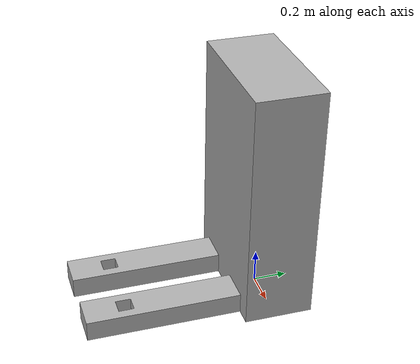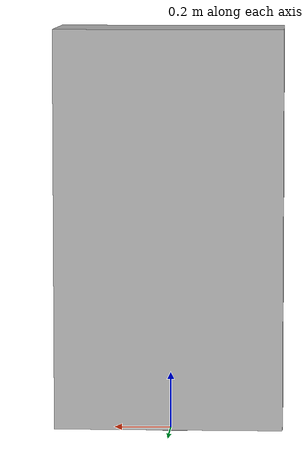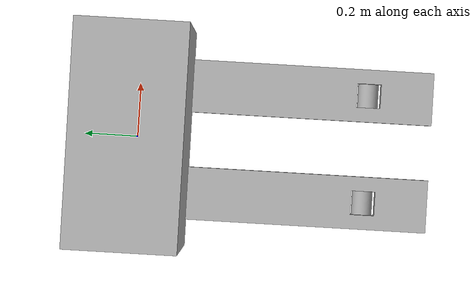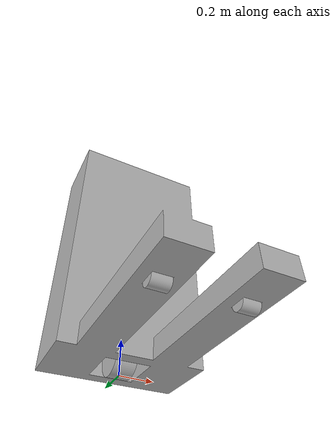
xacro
<?xml version="1.0" ?>
<robot name="Stacker" xmlns:xacro="http://www.ros.org/wiki/xacro">

<xacro:include filename="$(find stacker_description)/urdf/materials.xacro" />
<xacro:include filename="$(find stacker_description)/urdf/Stacker.trans" />
<xacro:include filename="$(find stacker_description)/urdf/Stacker.gazebo" />

<link name="base_footprint"/>

<link name="base_link">
  <inertial>
    <origin xyz="0.0 -0.05460469962339392 0.6911432734922607" rpy="0 0 0"/>
    <mass value="3737.5898543243475"/>
    <inertia ixx="851.809933" iyy="865.191869" izz="388.750555" ixy="0.0" iyz="-122.687313" ixz="0.0"/>
  </inertial>
  <visual>
    <origin xyz="0 0 0" rpy="0 0 0"/>
    <geometry>
      <mesh filename="package://stacker_description/meshes/base_link.stl" scale="0.001 0.001 0.001"/>
    </geometry>
    <material name="silver"/>
  </visual>
  <collision>
    <origin xyz="0 0 0" rpy="0 0 0"/>
    <geometry>
      <mesh filename="package://stacker_description/meshes/base_link.stl" scale="0.001 0.001 0.001"/>
    </geometry>
  </collision>
</link>

<link name="wheel_1">
  <inertial>
    <origin xyz="0.06 1.459363100219793e-17 1.3877787807814457e-17" rpy="0 0 0"/>
    <mass value="39.137804198788956"/>
    <inertia ixx="0.258799" iyy="0.176365" izz="0.176365" ixy="0.0" iyz="0.0" ixz="0.0"/>
  </inertial>
  <visual>
    <origin xyz="0.06 -0.0 -0.106" rpy="0 0 0"/>
    <geometry>
      <mesh filename="package://stacker_description/meshes/wheel_1.stl" scale="0.001 0.001 0.001"/>
    </geometry>
    <material name="silver"/>
  </visual>
  <collision>
    <origin xyz="0.06 -0.0 -0.106" rpy="0 0 0"/>
    <geometry>
      <mesh filename="package://stacker_description/meshes/wheel_1.stl" scale="0.001 0.001 0.001"/>
    </geometry>
  </collision>
</link>

<link name="steering_joint_1">
  <inertial>
    <origin xyz="1.1572818587658535e-15 5.296035624860686e-16 -0.03513567803671841" rpy="0 0 0"/>
    <mass value="1.8199216894981038"/>
    <inertia ixx="0.006611" iyy="0.012073" izz="0.011581" ixy="0.0" iyz="0.0" ixz="0.0"/>
  </inertial>
  <visual>
    <origin xyz="-0.0 -0.0 -0.23" rpy="0 0 0"/>
    <geometry>
      <mesh filename="package://stacker_description/meshes/steering_joint_1.stl" scale="0.001 0.001 0.001"/>
    </geometry>
    <material name="silver"/>
  </visual>
  <collision>
    <origin xyz="-0.0 -0.0 -0.23" rpy="0 0 0"/>
    <geometry>
      <mesh filename="package://stacker_description/meshes/steering_joint_1.stl" scale="0.001 0.001 0.001"/>
    </geometry>
  </collision>
</link>

<link name="fox_wheel_1_1">
  <inertial>
    <origin xyz="-0.04500011089751482 -1.1102230246251565e-16 0.0" rpy="0 0 0"/>
    <mass value="3.2608837645828146"/>
    <inertia ixx="0.002395" iyy="0.003399" izz="0.003399" ixy="-0.0" iyz="0.0" ixz="0.0"/>
  </inertial>
  <visual>
    <origin xyz="0.156458 0.86 -0.03" rpy="0 0 0"/>
    <geometry>
      <mesh filename="package://stacker_description/meshes/fox_wheel_1_1.stl" scale="0.001 0.001 0.001"/>
    </geometry>
    <material name="silver"/>
  </visual>
  <collision>
    <origin xyz="0.156458 0.86 -0.03" rpy="0 0 0"/>
    <geometry>
      <mesh filename="package://stacker_description/meshes/fox_wheel_1_1.stl" scale="0.001 0.001 0.001"/>
    </geometry>
  </collision>
</link>

<link name="fox_wheel_2_1">
  <inertial>
    <origin xyz="0.04500011089751482 -1.1102230246251565e-16 0.0" rpy="0 0 0"/>
    <mass value="3.2608837645828146"/>
    <inertia ixx="0.002395" iyy="0.003399" izz="0.003399" ixy="0.0" iyz="0.0" ixz="-0.0"/>
  </inertial>
  <visual>
    <origin xyz="-0.156458 0.86 -0.03" rpy="0 0 0"/>
    <geometry>
      <mesh filename="package://stacker_description/meshes/fox_wheel_2_1.stl" scale="0.001 0.001 0.001"/>
    </geometry>
    <material name="silver"/>
  </visual>
  <collision>
    <origin xyz="-0.156458 0.86 -0.03" rpy="0 0 0"/>
    <geometry>
      <mesh filename="package://stacker_description/meshes/fox_wheel_2_1.stl" scale="0.001 0.001 0.001"/>
    </geometry>
  </collision>
</link>

<joint name="base_link_joint" type="fixed">
     <parent link="base_footprint"/>
     <child link="base_link"/>
     <origin rpy="0 0 0" xyz="0 0 0"/>
   </joint>

<joint name="wheel_main_joint" type="continuous">
  <origin xyz="-0.06 0.0 -0.124" rpy="0 0 0"/>
  <parent link="steering_joint_1"/>
  <child link="wheel_1"/>
  <axis xyz="1.0 0.0 0.0"/>
</joint>

<joint name="steering_main_joint" type="revolute">
  <limit lower="-1.57" upper="1.57" effort="10" velocity="1"/>
  <origin xyz="0.0 0.0 0.23" rpy="0 0 0"/>
  <parent link="base_link"/>
  <child link="steering_joint_1"/>
  <axis xyz="0.0 0.0 -1.0"/>
</joint>

<joint name="fork_wheel_1" type="continuous">
  <origin xyz="-0.156458 -0.86 0.03" rpy="0 0 0"/>
  <parent link="base_link"/>
  <child link="fox_wheel_1_1"/>
  <axis xyz="1.0 0.0 0.0"/>
</joint>

<joint name="fork_wheel_2" type="continuous">
  <origin xyz="0.156458 -0.86 0.03" rpy="0 0 0"/>
  <parent link="base_link"/>
  <child link="fox_wheel_2_1"/>
  <axis xyz="1.0 0.0 0.0"/>
</joint>

<ros2_control name="GazeboSystem" type="system">
  <hardware>
    <plugin>gazebo_ros2_control/GazeboSystem</plugin>
  </hardware>
  <joint name="steering_main_joint">
    <command_interface name="position" />
    <state_interface name="position" />
  </joint>
  <joint name="wheel_main_joint">
    <command_interface name="velocity" />
    <state_interface name="velocity" />
    <state_interface name="position" />
  </joint>
</ros2_control>

</robot>

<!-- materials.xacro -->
<robot name="Stacker" xmlns:xacro="http://www.ros.org/wiki/xacro" >

<material name="silver">
  <color rgba="0.700 0.700 0.700 1.000"/>
</material>

</robot>

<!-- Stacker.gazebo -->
<robot name="Stacker" xmlns:xacro="http://www.ros.org/wiki/xacro" >

<xacro:property name="body_color" value="Gazebo/Silver" />

<gazebo>
  <plugin name="gazebo_ros2_control" filename="libgazebo_ros2_control.so" >
    <parameters>$(find stacker_description)/config/stacker_drive_controller.yaml</parameters>
  </plugin>
</gazebo>

<gazebo reference="base_link">
  <material>${body_color}</material>
  <mu1>0.2</mu1>
  <mu2>0.2</mu2>
  <selfCollide>true</selfCollide>
  <gravity>true</gravity>
</gazebo>

<gazebo reference="wheel_1">
  <material>${body_color}</material>
  <mu1>0.2</mu1>
  <mu2>0.2</mu2>
  <selfCollide>true</selfCollide>
</gazebo>

<gazebo reference="steering_joint_1">
  <material>${body_color}</material>
  <mu1>0.2</mu1>
  <mu2>0.2</mu2>
  <selfCollide>true</selfCollide>
</gazebo>

<gazebo reference="fox_wheel_1_1">
  <material>${body_color}</material>
  <mu1>0.2</mu1>
  <mu2>0.2</mu2>
  <selfCollide>true</selfCollide>
</gazebo>

<gazebo reference="fox_wheel_2_1">
  <material>${body_color}</material>
  <mu1>0.2</mu1>
  <mu2>0.2</mu2>
  <selfCollide>true</selfCollide>
</gazebo>

</robot>
